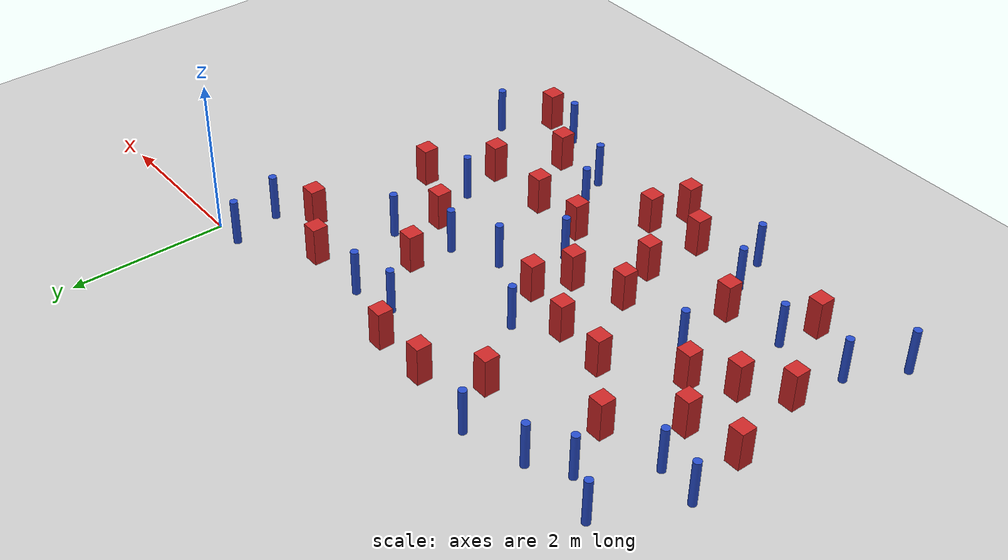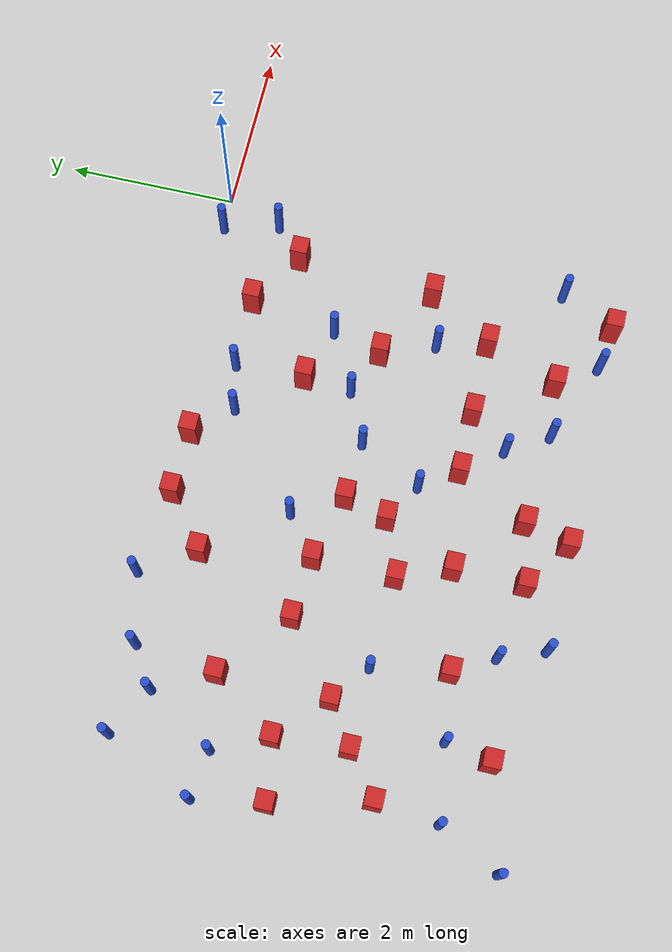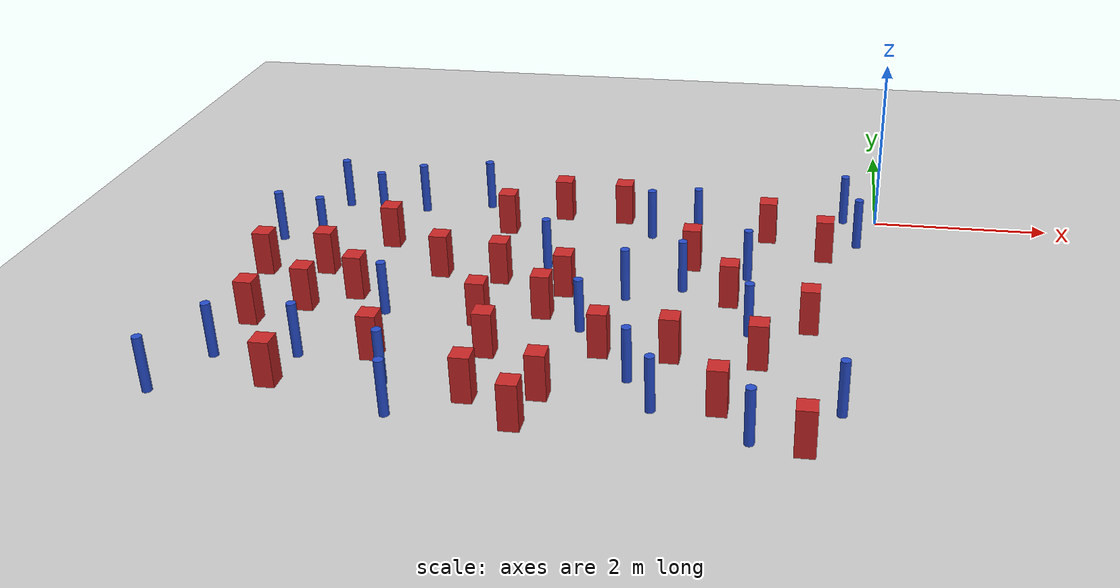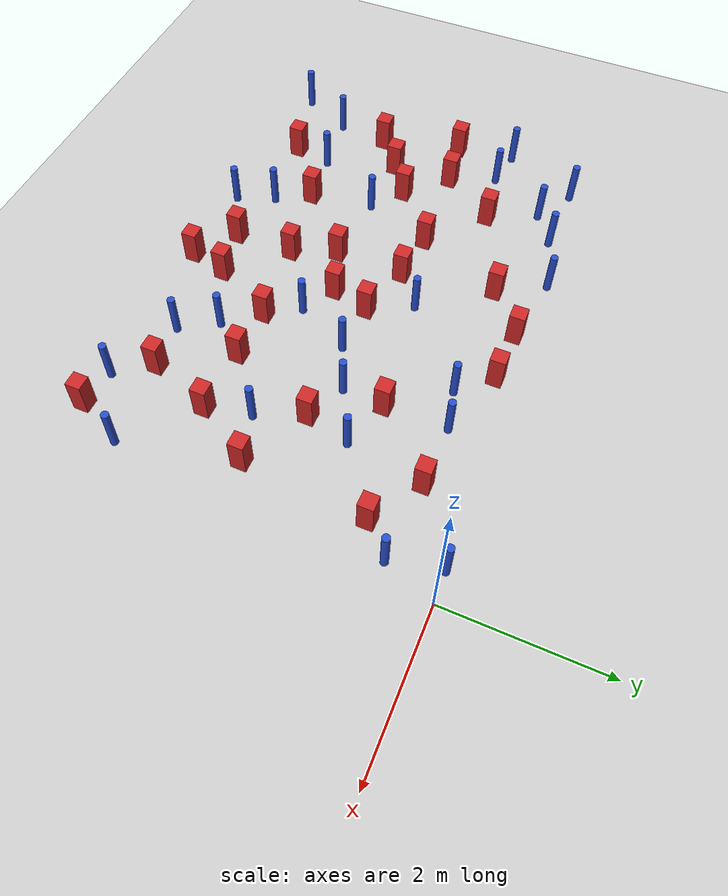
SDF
<sdf version="1.6">
 <world name="default">
  <model name="ground_plane">
   <static>1</static>
   <link name="link">
    <collision name="collision">
     <geometry><plane><normal>0 0 1</normal><size>100 100</size></plane></geometry>
     <surface><friction><ode><mu>100</mu><mu2>50</mu2></ode></friction></surface>
    </collision>
    <visual name="visual">
     <cast_shadows>0</cast_shadows>
     <geometry><plane><normal>0 0 1</normal><size>100 100</size></plane></geometry>
     <material>
      <ambient>1.0 1.0 1.0 1.0</ambient>
      <diffuse>0.8 0.8 0.8 1.0</diffuse>
      <specular>0.01 0.01 0.01 1.000000</specular>
     </material>
    </visual>
   </link>
  </model>
  <model name="pole_obstacle1">
   <static>true</static>
   <pose>-1.19439407619 -4.70607036886 7.38925637345e-09 -8.47170692799e-08 1.24976765033e-08 -1.74513093018e-07</pose>
   <link name="link">
    <pose>0 0 0.3 0 -0 0</pose>
    <inertial>
     <mass>1</mass>
     <inertia><ixx>0.145833</ixx><ixy>0</ixy><ixz>0</ixz><iyy>0.145833</iyy><iyz>0</iyz><izz>0.125</izz></inertia>
    </inertial>
    <collision name="collision">
     <geometry><cylinder><radius>0.05</radius><length>.6</length></cylinder></geometry>
    </collision>
    <visual name="visual">
     <geometry><cylinder><radius>0.05</radius><length>.6</length></cylinder></geometry>
     <material>
      <script><name>Gazebo/Blue</name><uri>file://media/materials/scripts/gazebo.material</uri></script>
     </material>
    </visual>
   </link>
  </model>
  <model name="pole_obstacle8">
   <static>true</static>
   <pose>-6.61200520473 -3.92718108275 7.38925637345e-09 -8.47170692798e-08 1.24976764937e-08 -1.74513093023e-07</pose>
   <link name="link">
    <pose>0 0 0.3 0 -0 0</pose>
    <inertial>
     <mass>1</mass>
     <inertia><ixx>0.145833</ixx><ixy>0</ixy><ixz>0</ixz><iyy>0.145833</iyy><iyz>0</iyz><izz>0.125</izz></inertia>
    </inertial>
    <collision name="collision">
     <geometry><cylinder><radius>0.05</radius><length>.6</length></cylinder></geometry>
    </collision>
    <visual name="visual">
     <geometry><cylinder><radius>0.05</radius><length>.6</length></cylinder></geometry>
     <material>
      <script><name>Gazebo/Blue</name><uri>file://media/materials/scripts/gazebo.material</uri></script>
     </material>
    </visual>
   </link>
  </model>
  <model name="pole_obstacle12">
   <static>true</static>
   <pose>-6.95947929492 -4.61365307097 7.38925637345e-09 -8.47170692796e-08 1.24976764786e-08 -1.74513093032e-07</pose>
   <link name="link">
    <pose>0 0 0.3 0 -0 0</pose>
    <inertial>
     <mass>1</mass>
     <inertia><ixx>0.145833</ixx><ixy>0</ixy><ixz>0</ixz><iyy>0.145833</iyy><iyz>0</iyz><izz>0.125</izz></inertia>
    </inertial>
    <collision name="collision">
     <geometry><cylinder><radius>0.05</radius><length>.6</length></cylinder></geometry>
    </collision>
    <visual name="visual">
     <geometry><cylinder><radius>0.05</radius><length>.6</length></cylinder></geometry>
     <material>
      <script><name>Gazebo/Blue</name><uri>file://media/materials/scripts/gazebo.material</uri></script>
     </material>
    </visual>
   </link>
  </model>
  <model name="pole_obstacle13">
   <static>true</static>
   <pose>-4.58148329279 -4.7009422635 7.38925637345e-09 -8.47170692796e-08 1.24976764786e-08 -1.74513093032e-07</pose>
   <link name="link">
    <pose>0 0 0.3 0 -0 0</pose>
    <inertial>
     <mass>1</mass>
     <inertia><ixx>0.145833</ixx><ixy>0</ixy><ixz>0</ixz><iyy>0.145833</iyy><iyz>0</iyz><izz>0.125</izz></inertia>
    </inertial>
    <collision name="collision">
     <geometry><cylinder><radius>0.05</radius><length>.6</length></cylinder></geometry>
    </collision>
    <visual name="visual">
     <geometry><cylinder><radius>0.05</radius><length>.6</length></cylinder></geometry>
     <material>
      <script><name>Gazebo/Blue</name><uri>file://media/materials/scripts/gazebo.material</uri></script>
     </material>
    </visual>
   </link>
  </model>
  <model name="square_post_obstacle16">
   <static>true</static>
   <pose>-3.0197415728 -0.309027023524 1.91545236811e-07 -7.35059704564e-06 1.12565212e-07 2.39332434364e-05</pose>
   <link name="link">
    <pose>0 0 0.25 0 -0 0</pose>
    <inertial>
     <mass>100</mass>
     <inertia>
      <ixx>0.166667</ixx>
      <ixy>0</ixy>
      <ixz>0</ixz>
      <iyy>0.166667</iyy>
      <iyz>0</iyz>
      <izz>0.166667</izz>
     </inertia>
    </inertial>
    <collision name="collision"><geometry><box><size>.2 .2 .5</size></box></geometry></collision>
    <visual name="visual">
     <geometry><box><size>.2 .2 .5</size></box></geometry>
     <material>
      <script><name>Gazebo/Red</name><uri>file://media/materials/scripts/gazebo.material</uri></script>
     </material>
    </visual>
   </link>
  </model>
  <model name="square_post_obstacle22">
   <static>true</static>
   <pose>-3.37285623047 -4.71704914912 1.91545236811e-07 -7.35059704564e-06 1.12565212e-07 2.39332434364e-05</pose>
   <link name="link">
    <pose>0 0 0.25 0 -0 0</pose>
    <inertial>
     <mass>100</mass>
     <inertia>
      <ixx>0.166667</ixx>
      <ixy>0</ixy>
      <ixz>0</ixz>
      <iyy>0.166667</iyy>
      <iyz>0</iyz>
      <izz>0.166667</izz>
     </inertia>
    </inertial>
    <collision name="collision"><geometry><box><size>.2 .2 .5</size></box></geometry></collision>
    <visual name="visual">
     <geometry><box><size>.2 .2 .5</size></box></geometry>
     <material>
      <script><name>Gazebo/Red</name><uri>file://media/materials/scripts/gazebo.material</uri></script>
     </material>
    </visual>
   </link>
  </model>
  <model name="square_post_obstacle24">
   <static>true</static>
   <pose>-5.87005394493 -4.31874911377 1.91545236811e-07 -7.35059704564e-06 1.12565212e-07 2.39332434364e-05</pose>
   <link name="link">
    <pose>0 0 0.25 0 -0 0</pose>
    <inertial>
     <mass>100</mass>
     <inertia>
      <ixx>0.166667</ixx>
      <ixy>0</ixy>
      <ixz>0</ixz>
      <iyy>0.166667</iyy>
      <iyz>0</iyz>
      <izz>0.166667</izz>
     </inertia>
    </inertial>
    <collision name="collision"><geometry><box><size>.2 .2 .5</size></box></geometry></collision>
    <visual name="visual">
     <geometry><box><size>.2 .2 .5</size></box></geometry>
     <material>
      <script><name>Gazebo/Red</name><uri>file://media/materials/scripts/gazebo.material</uri></script>
     </material>
    </visual>
   </link>
  </model>
  <model name="square_post_obstacle28">
   <static>true</static>
   <pose>-1.59388752806 -2.19603340673 1.91545236811e-07 -7.35059704564e-06 1.12565212e-07 2.39332434364e-05</pose>
   <link name="link">
    <pose>0 0 0.25 0 -0 0</pose>
    <inertial>
     <mass>100</mass>
     <inertia>
      <ixx>0.166667</ixx>
      <ixy>0</ixy>
      <ixz>0</ixz>
      <iyy>0.166667</iyy>
      <iyz>0</iyz>
      <izz>0.166667</izz>
     </inertia>
    </inertial>
    <collision name="collision"><geometry><box><size>.2 .2 .5</size></box></geometry></collision>
    <visual name="visual">
     <geometry><box><size>.2 .2 .5</size></box></geometry>
     <material>
      <script><name>Gazebo/Red</name><uri>file://media/materials/scripts/gazebo.material</uri></script>
     </material>
    </visual>
   </link>
  </model>
  <model name="pole_obstacle46">
   <static>true</static>
   <pose>-3.07615308099 -2.95783241751 7.38925637345e-09 -8.47170692798e-08 1.24976764939e-08 -1.74513093025e-07</pose>
   <link name="link">
    <pose>0 0 0.3 0 -0 0</pose>
    <inertial>
     <mass>1</mass>
     <inertia><ixx>0.145833</ixx><ixy>0</ixy><ixz>0</ixz><iyy>0.145833</iyy><iyz>0</iyz><izz>0.125</izz></inertia>
    </inertial>
    <collision name="collision">
     <geometry><cylinder><radius>0.05</radius><length>.6</length></cylinder></geometry>
    </collision>
    <visual name="visual">
     <geometry><cylinder><radius>0.05</radius><length>.6</length></cylinder></geometry>
     <material>
      <script><name>Gazebo/Blue</name><uri>file://media/materials/scripts/gazebo.material</uri></script>
     </material>
    </visual>
   </link>
  </model>
  <model name="pole_obstacle53">
   <static>true</static>
   <pose>-5.18787037111 -2.87014837666 7.38925637345e-09 -8.47170692798e-08 1.24976764937e-08 -1.74513093023e-07</pose>
   <link name="link">
    <pose>0 0 0.3 0 -0 0</pose>
    <inertial>
     <mass>1</mass>
     <inertia><ixx>0.145833</ixx><ixy>0</ixy><ixz>0</ixz><iyy>0.145833</iyy><iyz>0</iyz><izz>0.125</izz></inertia>
    </inertial>
    <collision name="collision">
     <geometry><cylinder><radius>0.05</radius><length>.6</length></cylinder></geometry>
    </collision>
    <visual name="visual">
     <geometry><cylinder><radius>0.05</radius><length>.6</length></cylinder></geometry>
     <material>
      <script><name>Gazebo/Blue</name><uri>file://media/materials/scripts/gazebo.material</uri></script>
     </material>
    </visual>
   </link>
  </model>
  <model name="square_post_obstacle43">
   <static>true</static>
   <pose>-3.23383460136 -4.20113498766 1.91545236811e-07 -7.35059704564e-06 1.12565212e-07 2.39332434364e-05</pose>
   <link name="link">
    <pose>0 0 0.25 0 -0 0</pose>
    <inertial>
     <mass>100</mass>
     <inertia>
      <ixx>0.166667</ixx>
      <ixy>0</ixy>
      <ixz>0</ixz>
      <iyy>0.166667</iyy>
      <iyz>0</iyz>
      <izz>0.166667</izz>
     </inertia>
    </inertial>
    <collision name="collision"><geometry><box><size>.2 .2 .5</size></box></geometry></collision>
    <visual name="visual">
     <geometry><box><size>.2 .2 .5</size></box></geometry>
     <material>
      <script><name>Gazebo/Red</name><uri>file://media/materials/scripts/gazebo.material</uri></script>
     </material>
    </visual>
   </link>
  </model>
  <model name="square_post_obstacle44">
   <static>true</static>
   <pose>-6.06771734913 -2.85174223798 1.91545236811e-07 -7.35059704564e-06 1.12565212e-07 2.39332434364e-05</pose>
   <link name="link">
    <pose>0 0 0.25 0 -0 0</pose>
    <inertial>
     <mass>100</mass>
     <inertia>
      <ixx>0.166667</ixx>
      <ixy>0</ixy>
      <ixz>0</ixz>
      <iyy>0.166667</iyy>
      <iyz>0</iyz>
      <izz>0.166667</izz>
     </inertia>
    </inertial>
    <collision name="collision"><geometry><box><size>.2 .2 .5</size></box></geometry></collision>
    <visual name="visual">
     <geometry><box><size>.2 .2 .5</size></box></geometry>
     <material>
      <script><name>Gazebo/Red</name><uri>file://media/materials/scripts/gazebo.material</uri></script>
     </material>
    </visual>
   </link>
  </model>
  <model name="square_post_obstacle59">
   <static>true</static>
   <pose>-3.52373397912 -2.69440705752 1.91545236811e-07 -7.35059704564e-06 1.12565212e-07 2.39332434364e-05</pose>
   <link name="link">
    <pose>0 0 0.25 0 -0 0</pose>
    <inertial>
     <mass>100</mass>
     <inertia>
      <ixx>0.166667</ixx>
      <ixy>0</ixy>
      <ixz>0</ixz>
      <iyy>0.166667</iyy>
      <iyz>0</iyz>
      <izz>0.166667</izz>
     </inertia>
    </inertial>
    <collision name="collision"><geometry><box><size>.2 .2 .5</size></box></geometry></collision>
    <visual name="visual">
     <geometry><box><size>.2 .2 .5</size></box></geometry>
     <material>
      <script><name>Gazebo/Red</name><uri>file://media/materials/scripts/gazebo.material</uri></script>
     </material>
    </visual>
   </link>
  </model>
  <model name="square_post_obstacle62">
   <static>true</static>
   <pose>-3.91966181065 -4.33296560692 1.91545236811e-07 -7.35059704564e-06 1.12565212e-07 2.39332434364e-05</pose>
   <link name="link">
    <pose>0 0 0.25 0 -0 0</pose>
    <inertial>
     <mass>100</mass>
     <inertia>
      <ixx>0.166667</ixx>
      <ixy>0</ixy>
      <ixz>0</ixz>
      <iyy>0.166667</iyy>
      <iyz>0</iyz>
      <izz>0.166667</izz>
     </inertia>
    </inertial>
    <collision name="collision"><geometry><box><size>.2 .2 .5</size></box></geometry></collision>
    <visual name="visual">
     <geometry><box><size>.2 .2 .5</size></box></geometry>
     <material>
      <script><name>Gazebo/Red</name><uri>file://media/materials/scripts/gazebo.material</uri></script>
     </material>
    </visual>
   </link>
  </model>
  <model name="square_post_obstacle70">
   <static>true</static>
   <pose>-0.69361656639 -4.76383594143 1.91545236811e-07 -7.35059704564e-06 1.12565212e-07 2.39332434364e-05</pose>
   <link name="link">
    <pose>0 0 0.25 0 -0 0</pose>
    <inertial>
     <mass>100</mass>
     <inertia>
      <ixx>0.166667</ixx>
      <ixy>0</ixy>
      <ixz>0</ixz>
      <iyy>0.166667</iyy>
      <iyz>0</iyz>
      <izz>0.166667</izz>
     </inertia>
    </inertial>
    <collision name="collision"><geometry><box><size>.2 .2 .5</size></box></geometry></collision>
    <visual name="visual">
     <geometry><box><size>.2 .2 .5</size></box></geometry>
     <material>
      <script><name>Gazebo/Red</name><uri>file://media/materials/scripts/gazebo.material</uri></script>
     </material>
    </visual>
   </link>
  </model>
  <model name="square_post_obstacle71">
   <static>true</static>
   <pose>-1.27488365399 -0.601258293646 1.91545236811e-07 -7.35059704564e-06 1.12565212e-07 2.39332434364e-05</pose>
   <link name="link">
    <pose>0 0 0.25 0 -0 0</pose>
    <inertial>
     <mass>100</mass>
     <inertia>
      <ixx>0.166667</ixx>
      <ixy>0</ixy>
      <ixz>0</ixz>
      <iyy>0.166667</iyy>
      <iyz>0</iyz>
      <izz>0.166667</izz>
     </inertia>
    </inertial>
    <collision name="collision"><geometry><box><size>.2 .2 .5</size></box></geometry></collision>
    <visual name="visual">
     <geometry><box><size>.2 .2 .5</size></box></geometry>
     <material>
      <script><name>Gazebo/Red</name><uri>file://media/materials/scripts/gazebo.material</uri></script>
     </material>
    </visual>
   </link>
  </model>
  <model name="pole_obstacle85">
   <static>true</static>
   <pose>-6.94989707997 -1.33283030148 7.38925637345e-09 -8.471706928e-08 1.24976765134e-08 -1.74513093015e-07</pose>
   <link name="link">
    <pose>0 0 0.3 0 -0 0</pose>
    <inertial>
     <mass>1</mass>
     <inertia><ixx>0.145833</ixx><ixy>0</ixy><ixz>0</ixz><iyy>0.145833</iyy><iyz>0</iyz><izz>0.125</izz></inertia>
    </inertial>
    <collision name="collision">
     <geometry><cylinder><radius>0.05</radius><length>.6</length></cylinder></geometry>
    </collision>
    <visual name="visual">
     <geometry><cylinder><radius>0.05</radius><length>.6</length></cylinder></geometry>
     <material>
      <script><name>Gazebo/Blue</name><uri>file://media/materials/scripts/gazebo.material</uri></script>
     </material>
    </visual>
   </link>
  </model>
  <model name="square_post_obstacle75">
   <static>true</static>
   <pose>-4.15457000457 -2.9286401098 1.91545236811e-07 -7.35059704564e-06 1.12565212e-07 2.39332434364e-05</pose>
   <link name="link">
    <pose>0 0 0.25 0 -0 0</pose>
    <inertial>
     <mass>100</mass>
     <inertia>
      <ixx>0.166667</ixx>
      <ixy>0</ixy>
      <ixz>0</ixz>
      <iyy>0.166667</iyy>
      <iyz>0</iyz>
      <izz>0.166667</izz>
     </inertia>
    </inertial>
    <collision name="collision"><geometry><box><size>.2 .2 .5</size></box></geometry></collision>
    <visual name="visual">
     <geometry><box><size>.2 .2 .5</size></box></geometry>
     <material>
      <script><name>Gazebo/Red</name><uri>file://media/materials/scripts/gazebo.material</uri></script>
     </material>
    </visual>
   </link>
  </model>
  <model name="square_post_obstacle83">
   <static>true</static>
   <pose>-0.609770428795 -1.01094992882 1.91545236811e-07 -7.35059704564e-06 1.12565212e-07 2.39332434364e-05</pose>
   <link name="link">
    <pose>0 0 0.25 0 -0 0</pose>
    <inertial>
     <mass>100</mass>
     <inertia>
      <ixx>0.166667</ixx>
      <ixy>0</ixy>
      <ixz>0</ixz>
      <iyy>0.166667</iyy>
      <iyz>0</iyz>
      <izz>0.166667</izz>
     </inertia>
    </inertial>
    <collision name="collision"><geometry><box><size>.2 .2 .5</size></box></geometry></collision>
    <visual name="visual">
     <geometry><box><size>.2 .2 .5</size></box></geometry>
     <material>
      <script><name>Gazebo/Red</name><uri>file://media/materials/scripts/gazebo.material</uri></script>
     </material>
    </visual>
   </link>
  </model>
  <model name="square_post_obstacle100">
   <static>true</static>
   <pose>-2.07921352108 -3.38220860064 1.91545236811e-07 -7.35059704564e-06 1.12565212e-07 2.39332434364e-05</pose>
   <link name="link">
    <pose>0 0 0.25 0 -0 0</pose>
    <inertial>
     <mass>100</mass>
     <inertia>
      <ixx>0.166667</ixx>
      <ixy>0</ixy>
      <ixz>0</ixz>
      <iyy>0.166667</iyy>
      <iyz>0</iyz>
      <izz>0.166667</izz>
     </inertia>
    </inertial>
    <collision name="collision"><geometry><box><size>.2 .2 .5</size></box></geometry></collision>
    <visual name="visual">
     <geometry><box><size>.2 .2 .5</size></box></geometry>
     <material>
      <script><name>Gazebo/Red</name><uri>file://media/materials/scripts/gazebo.material</uri></script>
     </material>
    </visual>
   </link>
  </model>
  <model name="square_post_obstacle104">
   <static>true</static>
   <pose>-6.13135346242 -2.02155329778 1.91545236811e-07 -7.35059704564e-06 1.12565212e-07 2.39332434364e-05</pose>
   <link name="link">
    <pose>0 0 0.25 0 -0 0</pose>
    <inertial>
     <mass>100</mass>
     <inertia>
      <ixx>0.166667</ixx>
      <ixy>0</ixy>
      <ixz>0</ixz>
      <iyy>0.166667</iyy>
      <iyz>0</iyz>
      <izz>0.166667</izz>
     </inertia>
    </inertial>
    <collision name="collision"><geometry><box><size>.2 .2 .5</size></box></geometry></collision>
    <visual name="visual">
     <geometry><box><size>.2 .2 .5</size></box></geometry>
     <material>
      <script><name>Gazebo/Red</name><uri>file://media/materials/scripts/gazebo.material</uri></script>
     </material>
    </visual>
   </link>
  </model>
  <model name="square_post_obstacle105">
   <static>true</static>
   <pose>-3.38559335654 -2.19345865186 1.91545236811e-07 -7.35059704564e-06 1.12565212e-07 2.39332434364e-05</pose>
   <link name="link">
    <pose>0 0 0.25 0 -0 0</pose>
    <inertial>
     <mass>100</mass>
     <inertia>
      <ixx>0.166667</ixx>
      <ixy>0</ixy>
      <ixz>0</ixz>
      <iyy>0.166667</iyy>
      <iyz>0</iyz>
      <izz>0.166667</izz>
     </inertia>
    </inertial>
    <collision name="collision"><geometry><box><size>.2 .2 .5</size></box></geometry></collision>
    <visual name="visual">
     <geometry><box><size>.2 .2 .5</size></box></geometry>
     <material>
      <script><name>Gazebo/Red</name><uri>file://media/materials/scripts/gazebo.material</uri></script>
     </material>
    </visual>
   </link>
  </model>
  <model name="pole_obstacle117">
   <static>true</static>
   <pose>-5.77571492116 -3.81686893982 7.38925637345e-09 -8.47170692798e-08 1.24976764937e-08 -1.74513093023e-07</pose>
   <link name="link">
    <pose>0 0 0.3 0 -0 0</pose>
    <inertial>
     <mass>1</mass>
     <inertia><ixx>0.145833</ixx><ixy>0</ixy><ixz>0</ixz><iyy>0.145833</iyy><iyz>0</iyz><izz>0.125</izz></inertia>
    </inertial>
    <collision name="collision">
     <geometry><cylinder><radius>0.05</radius><length>.6</length></cylinder></geometry>
    </collision>
    <visual name="visual">
     <geometry><cylinder><radius>0.05</radius><length>.6</length></cylinder></geometry>
     <material>
      <script><name>Gazebo/Blue</name><uri>file://media/materials/scripts/gazebo.material</uri></script>
     </material>
    </visual>
   </link>
  </model>
  <model name="pole_obstacle122">
   <static>true</static>
   <pose>-2.71148221332 -2.2368807396 7.38925637345e-09 -8.47170692798e-08 1.24976764939e-08 -1.74513093025e-07</pose>
   <link name="link">
    <pose>0 0 0.3 0 -0 0</pose>
    <inertial>
     <mass>1</mass>
     <inertia><ixx>0.145833</ixx><ixy>0</ixy><ixz>0</ixz><iyy>0.145833</iyy><iyz>0</iyz><izz>0.125</izz></inertia>
    </inertial>
    <collision name="collision">
     <geometry><cylinder><radius>0.05</radius><length>.6</length></cylinder></geometry>
    </collision>
    <visual name="visual">
     <geometry><cylinder><radius>0.05</radius><length>.6</length></cylinder></geometry>
     <material>
      <script><name>Gazebo/Blue</name><uri>file://media/materials/scripts/gazebo.material</uri></script>
     </material>
    </visual>
   </link>
  </model>
  <model name="square_post_obstacle124">
   <static>true</static>
   <pose>-4.34875601693 -0.758055964168 1.91545236811e-07 -7.35059704564e-06 1.12565212e-07 2.39332434364e-05</pose>
   <link name="link">
    <pose>0 0 0.25 0 -0 0</pose>
    <inertial>
     <mass>100</mass>
     <inertia>
      <ixx>0.166667</ixx>
      <ixy>0</ixy>
      <ixz>0</ixz>
      <iyy>0.166667</iyy>
      <iyz>0</iyz>
      <izz>0.166667</izz>
     </inertia>
    </inertial>
    <collision name="collision"><geometry><box><size>.2 .2 .5</size></box></geometry></collision>
    <visual name="visual">
     <geometry><box><size>.2 .2 .5</size></box></geometry>
     <material>
      <script><name>Gazebo/Red</name><uri>file://media/materials/scripts/gazebo.material</uri></script>
     </material>
    </visual>
   </link>
  </model>
  <model name="square_post_obstacle128">
   <static>true</static>
   <pose>-2.08057394551 -1.41588934591 1.91545236811e-07 -7.35059704564e-06 1.12565212e-07 2.39332434364e-05</pose>
   <link name="link">
    <pose>0 0 0.25 0 -0 0</pose>
    <inertial>
     <mass>100</mass>
     <inertia>
      <ixx>0.166667</ixx>
      <ixy>0</ixy>
      <ixz>0</ixz>
      <iyy>0.166667</iyy>
      <iyz>0</iyz>
      <izz>0.166667</izz>
     </inertia>
    </inertial>
    <collision name="collision"><geometry><box><size>.2 .2 .5</size></box></geometry></collision>
    <visual name="visual">
     <geometry><box><size>.2 .2 .5</size></box></geometry>
     <material>
      <script><name>Gazebo/Red</name><uri>file://media/materials/scripts/gazebo.material</uri></script>
     </material>
    </visual>
   </link>
  </model>
  <model name="square_post_obstacle129">
   <static>true</static>
   <pose>-1.2026283472 -3.39083425451 1.91545236811e-07 -7.35059704564e-06 1.12565212e-07 2.39332434364e-05</pose>
   <link name="link">
    <pose>0 0 0.25 0 -0 0</pose>
    <inertial>
     <mass>100</mass>
     <inertia>
      <ixx>0.166667</ixx>
      <ixy>0</ixy>
      <ixz>0</ixz>
      <iyy>0.166667</iyy>
      <iyz>0</iyz>
      <izz>0.166667</izz>
     </inertia>
    </inertial>
    <collision name="collision"><geometry><box><size>.2 .2 .5</size></box></geometry></collision>
    <visual name="visual">
     <geometry><box><size>.2 .2 .5</size></box></geometry>
     <material>
      <script><name>Gazebo/Red</name><uri>file://media/materials/scripts/gazebo.material</uri></script>
     </material>
    </visual>
   </link>
  </model>
  <model name="pole_obstacle133">
   <static>true</static>
   <pose>-2.44158150241 -3.83231627137 7.38925637345e-09 -8.47170692798e-08 1.24976764939e-08 -1.74513093025e-07</pose>
   <link name="link">
    <pose>0 0 0.3 0 -0 0</pose>
    <inertial>
     <mass>1</mass>
     <inertia><ixx>0.145833</ixx><ixy>0</ixy><ixz>0</ixz><iyy>0.145833</iyy><iyz>0</iyz><izz>0.125</izz></inertia>
    </inertial>
    <collision name="collision">
     <geometry><cylinder><radius>0.05</radius><length>.6</length></cylinder></geometry>
    </collision>
    <visual name="visual">
     <geometry><cylinder><radius>0.05</radius><length>.6</length></cylinder></geometry>
     <material>
      <script><name>Gazebo/Blue</name><uri>file://media/materials/scripts/gazebo.material</uri></script>
     </material>
    </visual>
   </link>
  </model>
  <model name="pole_obstacle143">
   <static>true</static>
   <pose>-5.94312492548 -0.632580841116 7.38925637345e-09 -8.47170692799e-08 1.24976765038e-08 -1.74513093018e-07</pose>
   <link name="link">
    <pose>0 0 0.3 0 -0 0</pose>
    <inertial>
     <mass>1</mass>
     <inertia><ixx>0.145833</ixx><ixy>0</ixy><ixz>0</ixz><iyy>0.145833</iyy><iyz>0</iyz><izz>0.125</izz></inertia>
    </inertial>
    <collision name="collision">
     <geometry><cylinder><radius>0.05</radius><length>.6</length></cylinder></geometry>
    </collision>
    <visual name="visual">
     <geometry><cylinder><radius>0.05</radius><length>.6</length></cylinder></geometry>
     <material>
      <script><name>Gazebo/Blue</name><uri>file://media/materials/scripts/gazebo.material</uri></script>
     </material>
    </visual>
   </link>
  </model>
  <model name="pole_obstacle144">
   <static>true</static>
   <pose>-0.393719172604 -0.0109213557006 7.38925637345e-09 -8.47170692798e-08 1.24976764932e-08 -1.74513093025e-07</pose>
   <link name="link">
    <pose>0 0 0.3 0 -0 0</pose>
    <inertial>
     <mass>1</mass>
     <inertia><ixx>0.145833</ixx><ixy>0</ixy><ixz>0</ixz><iyy>0.145833</iyy><iyz>0</iyz><izz>0.125</izz></inertia>
    </inertial>
    <collision name="collision">
     <geometry><cylinder><radius>0.05</radius><length>.6</length></cylinder></geometry>
    </collision>
    <visual name="visual">
     <geometry><cylinder><radius>0.05</radius><length>.6</length></cylinder></geometry>
     <material>
      <script><name>Gazebo/Blue</name><uri>file://media/materials/scripts/gazebo.material</uri></script>
     </material>
    </visual>
   </link>
  </model>
  <model name="pole_obstacle151">
   <static>true</static>
   <pose>-0.235036396653 -0.659464074725 7.38925637345e-09 -8.47170692798e-08 1.24976764934e-08 -1.74513093024e-07</pose>
   <link name="link">
    <pose>0 0 0.3 0 -0 0</pose>
    <inertial>
     <mass>1</mass>
     <inertia><ixx>0.145833</ixx><ixy>0</ixy><ixz>0</ixz><iyy>0.145833</iyy><iyz>0</iyz><izz>0.125</izz></inertia>
    </inertial>
    <collision name="collision">
     <geometry><cylinder><radius>0.05</radius><length>.6</length></cylinder></geometry>
    </collision>
    <visual name="visual">
     <geometry><cylinder><radius>0.05</radius><length>.6</length></cylinder></geometry>
     <material>
      <script><name>Gazebo/Blue</name><uri>file://media/materials/scripts/gazebo.material</uri></script>
     </material>
    </visual>
   </link>
  </model>
  <model name="pole_obstacle153">
   <static>true</static>
   <pose>-2.63199490929 -0.717683202061 7.38925637345e-09 -8.471706928e-08 1.24976765177e-08 -1.74513093012e-07</pose>
   <link name="link">
    <pose>0 0 0.3 0 -0 0</pose>
    <inertial>
     <mass>1</mass>
     <inertia><ixx>0.145833</ixx><ixy>0</ixy><ixz>0</ixz><iyy>0.145833</iyy><iyz>0</iyz><izz>0.125</izz></inertia>
    </inertial>
    <collision name="collision">
     <geometry><cylinder><radius>0.05</radius><length>.6</length></cylinder></geometry>
    </collision>
    <visual name="visual">
     <geometry><cylinder><radius>0.05</radius><length>.6</length></cylinder></geometry>
     <material>
      <script><name>Gazebo/Blue</name><uri>file://media/materials/scripts/gazebo.material</uri></script>
     </material>
    </visual>
   </link>
  </model>
  <model name="pole_obstacle159">
   <static>true</static>
   <pose>-6.49382502327 -0.323867652944 7.38925637345e-09 -8.47170692798e-08 1.24976765003e-08 -1.7451309302e-07</pose>
   <link name="link">
    <pose>0 0 0.3 0 -0 0</pose>
    <inertial>
     <mass>1</mass>
     <inertia><ixx>0.145833</ixx><ixy>0</ixy><ixz>0</ixz><iyy>0.145833</iyy><iyz>0</iyz><izz>0.125</izz></inertia>
    </inertial>
    <collision name="collision">
     <geometry><cylinder><radius>0.05</radius><length>.6</length></cylinder></geometry>
    </collision>
    <visual name="visual">
     <geometry><cylinder><radius>0.05</radius><length>.6</length></cylinder></geometry>
     <material>
      <script><name>Gazebo/Blue</name><uri>file://media/materials/scripts/gazebo.material</uri></script>
     </material>
    </visual>
   </link>
  </model>
  <model name="pole_obstacle161">
   <static>true</static>
   <pose>-1.34130436079 -2.81789923818 7.38925637345e-09 -8.47170692799e-08 1.24976765053e-08 -1.74513093017e-07</pose>
   <link name="link">
    <pose>0 0 0.3 0 -0 0</pose>
    <inertial>
     <mass>1</mass>
     <inertia><ixx>0.145833</ixx><ixy>0</ixy><ixz>0</ixz><iyy>0.145833</iyy><iyz>0</iyz><izz>0.125</izz></inertia>
    </inertial>
    <collision name="collision">
     <geometry><cylinder><radius>0.05</radius><length>.6</length></cylinder></geometry>
    </collision>
    <visual name="visual">
     <geometry><cylinder><radius>0.05</radius><length>.6</length></cylinder></geometry>
     <material>
      <script><name>Gazebo/Blue</name><uri>file://media/materials/scripts/gazebo.material</uri></script>
     </material>
    </visual>
   </link>
  </model>
  <model name="pole_obstacle162">
   <static>true</static>
   <pose>-4.7292080564 -0.142532944405 7.38925637345e-09 -8.471706928e-08 1.24976765188e-08 -1.74513093011e-07</pose>
   <link name="link">
    <pose>0 0 0.3 0 -0 0</pose>
    <inertial>
     <mass>1</mass>
     <inertia><ixx>0.145833</ixx><ixy>0</ixy><ixz>0</ixz><iyy>0.145833</iyy><iyz>0</iyz><izz>0.125</izz></inertia>
    </inertial>
    <collision name="collision">
     <geometry><cylinder><radius>0.05</radius><length>.6</length></cylinder></geometry>
    </collision>
    <visual name="visual">
     <geometry><cylinder><radius>0.05</radius><length>.6</length></cylinder></geometry>
     <material>
      <script><name>Gazebo/Blue</name><uri>file://media/materials/scripts/gazebo.material</uri></script>
     </material>
    </visual>
   </link>
  </model>
  <model name="square_post_obstacle155">
   <static>true</static>
   <pose>-6.52931846142 -3.21067023985 1.91545236811e-07 -7.35059704564e-06 1.12565212e-07 2.39332434364e-05</pose>
   <link name="link">
    <pose>0 0 0.25 0 -0 0</pose>
    <inertial>
     <mass>100</mass>
     <inertia>
      <ixx>0.166667</ixx>
      <ixy>0</ixy>
      <ixz>0</ixz>
      <iyy>0.166667</iyy>
      <iyz>0</iyz>
      <izz>0.166667</izz>
     </inertia>
    </inertial>
    <collision name="collision"><geometry><box><size>.2 .2 .5</size></box></geometry></collision>
    <visual name="visual">
     <geometry><box><size>.2 .2 .5</size></box></geometry>
     <material>
      <script><name>Gazebo/Red</name><uri>file://media/materials/scripts/gazebo.material</uri></script>
     </material>
    </visual>
   </link>
  </model>
  <model name="square_post_obstacle157">
   <static>true</static>
   <pose>-5.60843170852 -2.53965180999 1.91545236811e-07 -7.35059704564e-06 1.12565212e-07 2.39332434364e-05</pose>
   <link name="link">
    <pose>0 0 0.25 0 -0 0</pose>
    <inertial>
     <mass>100</mass>
     <inertia>
      <ixx>0.166667</ixx>
      <ixy>0</ixy>
      <ixz>0</ixz>
      <iyy>0.166667</iyy>
      <iyz>0</iyz>
      <izz>0.166667</izz>
     </inertia>
    </inertial>
    <collision name="collision"><geometry><box><size>.2 .2 .5</size></box></geometry></collision>
    <visual name="visual">
     <geometry><box><size>.2 .2 .5</size></box></geometry>
     <material>
      <script><name>Gazebo/Red</name><uri>file://media/materials/scripts/gazebo.material</uri></script>
     </material>
    </visual>
   </link>
  </model>
  <model name="square_post_obstacle163">
   <static>true</static>
   <pose>-0.725972759117 -2.64316494163 1.91545236811e-07 -7.35059704564e-06 1.12565212e-07 2.39332434364e-05</pose>
   <link name="link">
    <pose>0 0 0.25 0 -0 0</pose>
    <inertial>
     <mass>100</mass>
     <inertia>
      <ixx>0.166667</ixx>
      <ixy>0</ixy>
      <ixz>0</ixz>
      <iyy>0.166667</iyy>
      <iyz>0</iyz>
      <izz>0.166667</izz>
     </inertia>
    </inertial>
    <collision name="collision"><geometry><box><size>.2 .2 .5</size></box></geometry></collision>
    <visual name="visual">
     <geometry><box><size>.2 .2 .5</size></box></geometry>
     <material>
      <script><name>Gazebo/Red</name><uri>file://media/materials/scripts/gazebo.material</uri></script>
     </material>
    </visual>
   </link>
  </model>
  <model name="pole_obstacle167">
   <static>true</static>
   <pose>-5.50599613517 -0.346773764389 7.38925637345e-09 -8.47170692798e-08 1.24976765003e-08 -1.7451309302e-07</pose>
   <link name="link">
    <pose>0 0 0.3 0 -0 0</pose>
    <inertial>
     <mass>1</mass>
     <inertia><ixx>0.145833</ixx><ixy>0</ixy><ixz>0</ixz><iyy>0.145833</iyy><iyz>0</iyz><izz>0.125</izz></inertia>
    </inertial>
    <collision name="collision">
     <geometry><cylinder><radius>0.05</radius><length>.6</length></cylinder></geometry>
    </collision>
    <visual name="visual">
     <geometry><cylinder><radius>0.05</radius><length>.6</length></cylinder></geometry>
     <material>
      <script><name>Gazebo/Blue</name><uri>file://media/materials/scripts/gazebo.material</uri></script>
     </material>
    </visual>
   </link>
  </model>
  <model name="pole_obstacle168">
   <static>true</static>
   <pose>-6.41757662892 -1.41068933266 7.38925637345e-09 -8.471706928e-08 1.24976765134e-08 -1.74513093015e-07</pose>
   <link name="link">
    <pose>0 0 0.3 0 -0 0</pose>
    <inertial>
     <mass>1</mass>
     <inertia><ixx>0.145833</ixx><ixy>0</ixy><ixz>0</ixz><iyy>0.145833</iyy><iyz>0</iyz><izz>0.125</izz></inertia>
    </inertial>
    <collision name="collision">
     <geometry><cylinder><radius>0.05</radius><length>.6</length></cylinder></geometry>
    </collision>
    <visual name="visual">
     <geometry><cylinder><radius>0.05</radius><length>.6</length></cylinder></geometry>
     <material>
      <script><name>Gazebo/Blue</name><uri>file://media/materials/scripts/gazebo.material</uri></script>
     </material>
    </visual>
   </link>
  </model>
  <model name="square_post_obstacle165">
   <static>true</static>
   <pose>-1.52460587476 -4.23494616129 1.91545236811e-07 -7.35059704564e-06 1.12565212e-07 2.39332434364e-05</pose>
   <link name="link">
    <pose>0 0 0.25 0 -0 0</pose>
    <inertial>
     <mass>100</mass>
     <inertia>
      <ixx>0.166667</ixx>
      <ixy>0</ixy>
      <ixz>0</ixz>
      <iyy>0.166667</iyy>
      <iyz>0</iyz>
      <izz>0.166667</izz>
     </inertia>
    </inertial>
    <collision name="collision"><geometry><box><size>.2 .2 .5</size></box></geometry></collision>
    <visual name="visual">
     <geometry><box><size>.2 .2 .5</size></box></geometry>
     <material>
      <script><name>Gazebo/Red</name><uri>file://media/materials/scripts/gazebo.material</uri></script>
     </material>
    </visual>
   </link>
  </model>
  <model name="square_post_obstacle175">
   <static>true</static>
   <pose>-5.03606846301 -3.7183091727 1.91545236811e-07 -7.35059704564e-06 1.12565212e-07 2.39332434364e-05</pose>
   <link name="link">
    <pose>0 0 0.25 0 -0 0</pose>
    <inertial>
     <mass>100</mass>
     <inertia>
      <ixx>0.166667</ixx>
      <ixy>0</ixy>
      <ixz>0</ixz>
      <iyy>0.166667</iyy>
      <iyz>0</iyz>
      <izz>0.166667</izz>
     </inertia>
    </inertial>
    <collision name="collision"><geometry><box><size>.2 .2 .5</size></box></geometry></collision>
    <visual name="visual">
     <geometry><box><size>.2 .2 .5</size></box></geometry>
     <material>
      <script><name>Gazebo/Red</name><uri>file://media/materials/scripts/gazebo.material</uri></script>
     </material>
    </visual>
   </link>
  </model>
  <model name="pole_obstacle182">
   <static>true</static>
   <pose>-1.43936867903 -1.61644656829 7.38925637345e-09 -8.471706928e-08 1.24976765079e-08 -1.74513093017e-07</pose>
   <link name="link">
    <pose>0 0 0.3 0 -0 0</pose>
    <inertial>
     <mass>1</mass>
     <inertia><ixx>0.145833</ixx><ixy>0</ixy><ixz>0</ixz><iyy>0.145833</iyy><iyz>0</iyz><izz>0.125</izz></inertia>
    </inertial>
    <collision name="collision">
     <geometry><cylinder><radius>0.05</radius><length>.6</length></cylinder></geometry>
    </collision>
    <visual name="visual">
     <geometry><cylinder><radius>0.05</radius><length>.6</length></cylinder></geometry>
     <material>
      <script><name>Gazebo/Blue</name><uri>file://media/materials/scripts/gazebo.material</uri></script>
     </material>
    </visual>
   </link>
  </model>
  <model name="square_post_obstacle183">
   <static>true</static>
   <pose>-3.92374325133 -3.52334005403 1.91545236811e-07 -7.35059704564e-06 1.12565212e-07 2.39332434364e-05</pose>
   <link name="link">
    <pose>0 0 0.25 0 -0 0</pose>
    <inertial>
     <mass>100</mass>
     <inertia>
      <ixx>0.166667</ixx>
      <ixy>0</ixy>
      <ixz>0</ixz>
      <iyy>0.166667</iyy>
      <iyz>0</iyz>
      <izz>0.166667</izz>
     </inertia>
    </inertial>
    <collision name="collision"><geometry><box><size>.2 .2 .5</size></box></geometry></collision>
    <visual name="visual">
     <geometry><box><size>.2 .2 .5</size></box></geometry>
     <material>
      <script><name>Gazebo/Red</name><uri>file://media/materials/scripts/gazebo.material</uri></script>
     </material>
    </visual>
   </link>
  </model>
  <model name="square_post_obstacle189">
   <static>true</static>
   <pose>-5.61308638919 -1.2862017795 1.91545236811e-07 -7.35059704564e-06 1.12565212e-07 2.39332434364e-05</pose>
   <link name="link">
    <pose>0 0 0.25 0 -0 0</pose>
    <inertial>
     <mass>100</mass>
     <inertia>
      <ixx>0.166667</ixx>
      <ixy>0</ixy>
      <ixz>0</ixz>
      <iyy>0.166667</iyy>
      <iyz>0</iyz>
      <izz>0.166667</izz>
     </inertia>
    </inertial>
    <collision name="collision"><geometry><box><size>.2 .2 .5</size></box></geometry></collision>
    <visual name="visual">
     <geometry><box><size>.2 .2 .5</size></box></geometry>
     <material>
      <script><name>Gazebo/Red</name><uri>file://media/materials/scripts/gazebo.material</uri></script>
     </material>
    </visual>
   </link>
  </model>
  <model name="pole_obstacle193">
   <static>true</static>
   <pose>-0.371162778517 -4.14952224325 7.38925637345e-09 -8.471706928e-08 1.24976765079e-08 -1.74513093015e-07</pose>
   <link name="link">
    <pose>0 0 0.3 0 -0 0</pose>
    <inertial>
     <mass>1</mass>
     <inertia><ixx>0.145833</ixx><ixy>0</ixy><ixz>0</ixz><iyy>0.145833</iyy><iyz>0</iyz><izz>0.125</izz></inertia>
    </inertial>
    <collision name="collision">
     <geometry><cylinder><radius>0.05</radius><length>.6</length></cylinder></geometry>
    </collision>
    <visual name="visual">
     <geometry><cylinder><radius>0.05</radius><length>.6</length></cylinder></geometry>
     <material>
      <script><name>Gazebo/Blue</name><uri>file://media/materials/scripts/gazebo.material</uri></script>
     </material>
    </visual>
   </link>
  </model>
  <model name="pole_obstacle196">
   <static>true</static>
   <pose>-3.69829041686 -1.63358915884 7.38925637345e-09 -8.471706928e-08 1.24976765152e-08 -1.74513093012e-07</pose>
   <link name="link">
    <pose>0 0 0.3 0 -0 0</pose>
    <inertial>
     <mass>1</mass>
     <inertia><ixx>0.145833</ixx><ixy>0</ixy><ixz>0</ixz><iyy>0.145833</iyy><iyz>0</iyz><izz>0.125</izz></inertia>
    </inertial>
    <collision name="collision">
     <geometry><cylinder><radius>0.05</radius><length>.6</length></cylinder></geometry>
    </collision>
    <visual name="visual">
     <geometry><cylinder><radius>0.05</radius><length>.6</length></cylinder></geometry>
     <material>
      <script><name>Gazebo/Blue</name><uri>file://media/materials/scripts/gazebo.material</uri></script>
     </material>
    </visual>
   </link>
  </model>
  <model name="pole_obstacle199">
   <static>true</static>
   <pose>-2.14697415023 -4.31197428316 7.38925637345e-09 -8.47170692798e-08 1.24976765033e-08 -1.74513093019e-07</pose>
   <link name="link">
    <pose>0 0 0.3 0 -0 0</pose>
    <inertial>
     <mass>1</mass>
     <inertia><ixx>0.145833</ixx><ixy>0</ixy><ixz>0</ixz><iyy>0.145833</iyy><iyz>0</iyz><izz>0.125</izz></inertia>
    </inertial>
    <collision name="collision">
     <geometry><cylinder><radius>0.05</radius><length>.6</length></cylinder></geometry>
    </collision>
    <visual name="visual">
     <geometry><cylinder><radius>0.05</radius><length>.6</length></cylinder></geometry>
     <material>
      <script><name>Gazebo/Blue</name><uri>file://media/materials/scripts/gazebo.material</uri></script>
     </material>
    </visual>
   </link>
  </model>
  <model name="pole_obstacle201">
   <static>true</static>
   <pose>-2.121596088 -1.97055095166 7.38925637345e-09 -8.471706928e-08 1.249767651e-08 -1.74513093015e-07</pose>
   <link name="link">
    <pose>0 0 0.3 0 -0 0</pose>
    <inertial>
     <mass>1</mass>
     <inertia><ixx>0.145833</ixx><ixy>0</ixy><ixz>0</ixz><iyy>0.145833</iyy><iyz>0</iyz><izz>0.125</izz></inertia>
    </inertial>
    <collision name="collision">
     <geometry><cylinder><radius>0.05</radius><length>.6</length></cylinder></geometry>
    </collision>
    <visual name="visual">
     <geometry><cylinder><radius>0.05</radius><length>.6</length></cylinder></geometry>
     <material>
      <script><name>Gazebo/Blue</name><uri>file://media/materials/scripts/gazebo.material</uri></script>
     </material>
    </visual>
   </link>
  </model>
  <model name="pole_obstacle205">
   <static>true</static>
   <pose>-4.77764050216 -4.18843764306 7.38925637345e-09 -8.47170692796e-08 1.24976764786e-08 -1.74513093032e-07</pose>
   <link name="link">
    <pose>0 0 0.3 0 -0 0</pose>
    <inertial>
     <mass>1</mass>
     <inertia><ixx>0.145833</ixx><ixy>0</ixy><ixz>0</ixz><iyy>0.145833</iyy><iyz>0</iyz><izz>0.125</izz></inertia>
    </inertial>
    <collision name="collision">
     <geometry><cylinder><radius>0.05</radius><length>.6</length></cylinder></geometry>
    </collision>
    <visual name="visual">
     <geometry><cylinder><radius>0.05</radius><length>.6</length></cylinder></geometry>
     <material>
      <script><name>Gazebo/Blue</name><uri>file://media/materials/scripts/gazebo.material</uri></script>
     </material>
    </visual>
   </link>
  </model>
  <model name="square_post_obstacle209">
   <static>true</static>
   <pose>-4.84118435785 -1.92824216634 1.91545236811e-07 -7.35059704564e-06 1.12565212e-07 2.39332434364e-05</pose>
   <link name="link">
    <pose>0 0 0.25 0 -0 0</pose>
    <inertial>
     <mass>100</mass>
     <inertia>
      <ixx>0.166667</ixx>
      <ixy>0</ixy>
      <ixz>0</ixz>
      <iyy>0.166667</iyy>
      <iyz>0</iyz>
      <izz>0.166667</izz>
     </inertia>
    </inertial>
    <collision name="collision"><geometry><box><size>.2 .2 .5</size></box></geometry></collision>
    <visual name="visual">
     <geometry><box><size>.2 .2 .5</size></box></geometry>
     <material>
      <script><name>Gazebo/Red</name><uri>file://media/materials/scripts/gazebo.material</uri></script>
     </material>
    </visual>
   </link>
  </model>
  <model name="pole_obstacle212">
   <static>true</static>
   <pose>-2.09907131567 -0.594928786207 7.38925637345e-09 -8.471706928e-08 1.24976765177e-08 -1.74513093012e-07</pose>
   <link name="link">
    <pose>0 0 0.3 0 -0 0</pose>
    <inertial>
     <mass>1</mass>
     <inertia><ixx>0.145833</ixx><ixy>0</ixy><ixz>0</ixz><iyy>0.145833</iyy><iyz>0</iyz><izz>0.125</izz></inertia>
    </inertial>
    <collision name="collision">
     <geometry><cylinder><radius>0.05</radius><length>.6</length></cylinder></geometry>
    </collision>
    <visual name="visual">
     <geometry><cylinder><radius>0.05</radius><length>.6</length></cylinder></geometry>
     <material>
      <script><name>Gazebo/Blue</name><uri>file://media/materials/scripts/gazebo.material</uri></script>
     </material>
    </visual>
   </link>
  </model>
  <model name="square_post_obstacle211">
   <static>true</static>
   <pose>-2.79686757757 -3.3781925364 1.91545236811e-07 -7.35059704564e-06 1.12565212e-07 2.39332434364e-05</pose>
   <link name="link">
    <pose>0 0 0.25 0 -0 0</pose>
    <inertial>
     <mass>100</mass>
     <inertia>
      <ixx>0.166667</ixx>
      <ixy>0</ixy>
      <ixz>0</ixz>
      <iyy>0.166667</iyy>
      <iyz>0</iyz>
      <izz>0.166667</izz>
     </inertia>
    </inertial>
    <collision name="collision"><geometry><box><size>.2 .2 .5</size></box></geometry></collision>
    <visual name="visual">
     <geometry><box><size>.2 .2 .5</size></box></geometry>
     <material>
      <script><name>Gazebo/Red</name><uri>file://media/materials/scripts/gazebo.material</uri></script>
     </material>
    </visual>
   </link>
  </model>
  <model name="square_post_obstacle213">
   <static>true</static>
   <pose>-4.14566241386 -1.99510129218 1.91545236811e-07 -7.35059704564e-06 1.12565212e-07 2.39332434364e-05</pose>
   <link name="link">
    <pose>0 0 0.25 0 -0 0</pose>
    <inertial>
     <mass>100</mass>
     <inertia>
      <ixx>0.166667</ixx>
      <ixy>0</ixy>
      <ixz>0</ixz>
      <iyy>0.166667</iyy>
      <iyz>0</iyz>
      <izz>0.166667</izz>
     </inertia>
    </inertial>
    <collision name="collision"><geometry><box><size>.2 .2 .5</size></box></geometry></collision>
    <visual name="visual">
     <geometry><box><size>.2 .2 .5</size></box></geometry>
     <material>
      <script><name>Gazebo/Red</name><uri>file://media/materials/scripts/gazebo.material</uri></script>
     </material>
    </visual>
   </link>
  </model>
  <model name="square_post_obstacle224">
   <static>true</static>
   <pose>-3.7556300352 -0.295864011919 1.91545236811e-07 -7.35059704564e-06 1.12565212e-07 2.39332434364e-05</pose>
   <link name="link">
    <pose>0 0 0.25 0 -0 0</pose>
    <inertial>
     <mass>100</mass>
     <inertia>
      <ixx>0.166667</ixx>
      <ixy>0</ixy>
      <ixz>0</ixz>
      <iyy>0.166667</iyy>
      <iyz>0</iyz>
      <izz>0.166667</izz>
     </inertia>
    </inertial>
    <collision name="collision"><geometry><box><size>.2 .2 .5</size></box></geometry></collision>
    <visual name="visual">
     <geometry><box><size>.2 .2 .5</size></box></geometry>
     <material>
      <script><name>Gazebo/Red</name><uri>file://media/materials/scripts/gazebo.material</uri></script>
     </material>
    </visual>
   </link>
  </model>
  <model name="square_post_obstacle226">
   <static>true</static>
   <pose>-6.8044700352 -2.12298001192 1.91545236811e-07 -7.35059704564e-06 1.12565212e-07 2.39332434364e-05</pose>
   <link name="link">
    <pose>0 0 0.25 0 -0 0</pose>
    <inertial>
     <mass>100</mass>
     <inertia>
      <ixx>0.166667</ixx>
      <ixy>0</ixy>
      <ixz>0</ixz>
      <iyy>0.166667</iyy>
      <iyz>0</iyz>
      <izz>0.166667</izz>
     </inertia>
    </inertial>
    <collision name="collision"><geometry><box><size>.2 .2 .5</size></box></geometry></collision>
    <visual name="visual">
     <geometry><box><size>.2 .2 .5</size></box></geometry>
     <material>
      <script><name>Gazebo/Red</name><uri>file://media/materials/scripts/gazebo.material</uri></script>
     </material>
    </visual>
   </link>
  </model>
 </world>
</sdf>
